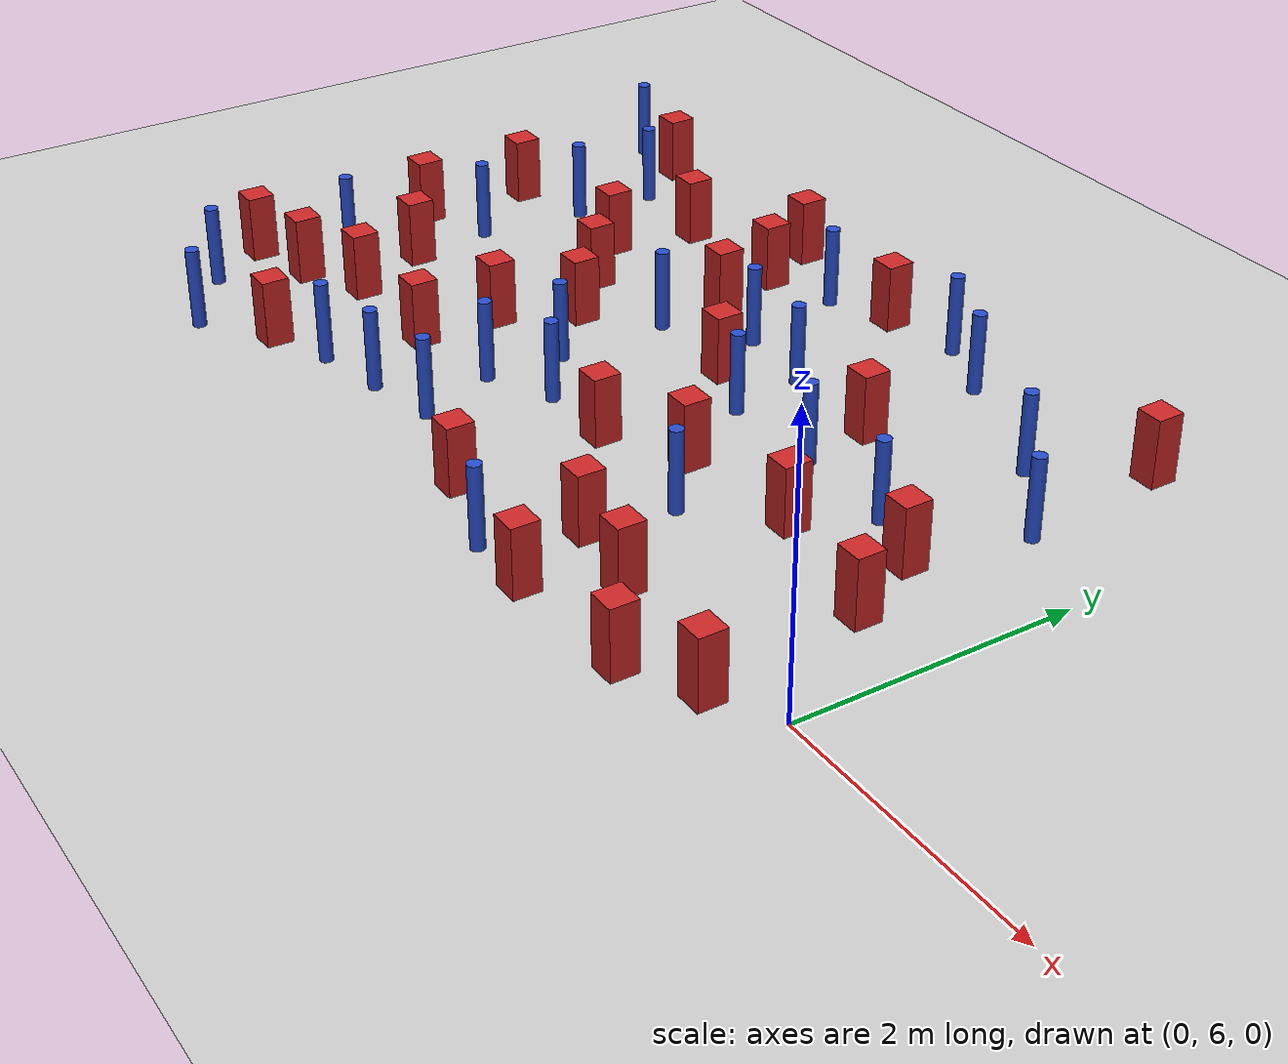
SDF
<sdf version="1.6">
 <world name="default">
  <model name="ground_plane">
   <static>1</static>
   <link name="link">
    <collision name="collision">
     <geometry><plane><normal>0 0 1</normal><size>100 100</size></plane></geometry>
     <surface><friction><ode><mu>100</mu><mu2>50</mu2></ode></friction></surface>
    </collision>
    <visual name="visual">
     <cast_shadows>0</cast_shadows>
     <geometry><plane><normal>0 0 1</normal><size>100 100</size></plane></geometry>
     <material>
      <ambient>1.0 1.0 1.0 1.0</ambient>
      <diffuse>0.8 0.8 0.8 1.0</diffuse>
      <specular>0.01 0.01 0.01 1.000000</specular>
     </material>
    </visual>
   </link>
  </model>
  <model name="pole_obstacle3">
   <static>true</static>
   <pose>-4.21250387356 7.05440987555 7.38925637345e-09 -8.47170692796e-08 1.24976764786e-08 -1.74513093032e-07</pose>
   <link name="link">
    <pose>0 0 0.3 0 -0 0</pose>
    <inertial>
     <mass>1</mass>
     <inertia><ixx>0.145833</ixx><ixy>0</ixy><ixz>0</ixz><iyy>0.145833</iyy><iyz>0</iyz><izz>0.125</izz></inertia>
    </inertial>
    <collision name="collision">
     <geometry><cylinder><radius>0.05</radius><length>.6</length></cylinder></geometry>
    </collision>
    <visual name="visual">
     <geometry><cylinder><radius>0.05</radius><length>.6</length></cylinder></geometry>
     <material>
      <script><name>Gazebo/Blue</name><uri>file://media/materials/scripts/gazebo.material</uri></script>
     </material>
    </visual>
   </link>
  </model>
  <model name="pole_obstacle4">
   <static>true</static>
   <pose>-2.12254843828 6.64884126362 7.38925637345e-09 -8.47170692798e-08 1.24976765033e-08 -1.74513093019e-07</pose>
   <link name="link">
    <pose>0 0 0.3 0 -0 0</pose>
    <inertial>
     <mass>1</mass>
     <inertia><ixx>0.145833</ixx><ixy>0</ixy><ixz>0</ixz><iyy>0.145833</iyy><iyz>0</iyz><izz>0.125</izz></inertia>
    </inertial>
    <collision name="collision">
     <geometry><cylinder><radius>0.05</radius><length>.6</length></cylinder></geometry>
    </collision>
    <visual name="visual">
     <geometry><cylinder><radius>0.05</radius><length>.6</length></cylinder></geometry>
     <material>
      <script><name>Gazebo/Blue</name><uri>file://media/materials/scripts/gazebo.material</uri></script>
     </material>
    </visual>
   </link>
  </model>
  <model name="square_post_obstacle12">
   <static>true</static>
   <pose>-3.14189247281 6.71943012908 1.91545236811e-07 -7.35059704564e-06 1.12565212e-07 2.39332434364e-05</pose>
   <link name="link">
    <pose>0 0 0.25 0 -0 0</pose>
    <inertial>
     <mass>100</mass>
     <inertia>
      <ixx>0.166667</ixx>
      <ixy>0</ixy>
      <ixz>0</ixz>
      <iyy>0.166667</iyy>
      <iyz>0</iyz>
      <izz>0.166667</izz>
     </inertia>
    </inertial>
    <collision name="collision"><geometry><box><size>.2 .2 .5</size></box></geometry></collision>
    <visual name="visual">
     <geometry><box><size>.2 .2 .5</size></box></geometry>
     <material>
      <script><name>Gazebo/Red</name><uri>file://media/materials/scripts/gazebo.material</uri></script>
     </material>
    </visual>
   </link>
  </model>
  <model name="square_post_obstacle14">
   <static>true</static>
   <pose>-4.39685745982 8.95476248692 1.91545236811e-07 -7.35059704564e-06 1.12565212e-07 2.39332434364e-05</pose>
   <link name="link">
    <pose>0 0 0.25 0 -0 0</pose>
    <inertial>
     <mass>100</mass>
     <inertia>
      <ixx>0.166667</ixx>
      <ixy>0</ixy>
      <ixz>0</ixz>
      <iyy>0.166667</iyy>
      <iyz>0</iyz>
      <izz>0.166667</izz>
     </inertia>
    </inertial>
    <collision name="collision"><geometry><box><size>.2 .2 .5</size></box></geometry></collision>
    <visual name="visual">
     <geometry><box><size>.2 .2 .5</size></box></geometry>
     <material>
      <script><name>Gazebo/Red</name><uri>file://media/materials/scripts/gazebo.material</uri></script>
     </material>
    </visual>
   </link>
  </model>
  <model name="pole_obstacle18">
   <static>true</static>
   <pose>-6.94348371261 9.46036170192 7.38925637345e-09 -8.471706928e-08 1.24976765081e-08 -1.74513093015e-07</pose>
   <link name="link">
    <pose>0 0 0.3 0 -0 0</pose>
    <inertial>
     <mass>1</mass>
     <inertia><ixx>0.145833</ixx><ixy>0</ixy><ixz>0</ixz><iyy>0.145833</iyy><iyz>0</iyz><izz>0.125</izz></inertia>
    </inertial>
    <collision name="collision">
     <geometry><cylinder><radius>0.05</radius><length>.6</length></cylinder></geometry>
    </collision>
    <visual name="visual">
     <geometry><cylinder><radius>0.05</radius><length>.6</length></cylinder></geometry>
     <material>
      <script><name>Gazebo/Blue</name><uri>file://media/materials/scripts/gazebo.material</uri></script>
     </material>
    </visual>
   </link>
  </model>
  <model name="square_post_obstacle29">
   <static>true</static>
   <pose>-0.868433852179 7.46505476726 1.91545236811e-07 -7.35059704564e-06 1.12565212e-07 2.39332434364e-05</pose>
   <link name="link">
    <pose>0 0 0.25 0 -0 0</pose>
    <inertial>
     <mass>100</mass>
     <inertia>
      <ixx>0.166667</ixx>
      <ixy>0</ixy>
      <ixz>0</ixz>
      <iyy>0.166667</iyy>
      <iyz>0</iyz>
      <izz>0.166667</izz>
     </inertia>
    </inertial>
    <collision name="collision"><geometry><box><size>.2 .2 .5</size></box></geometry></collision>
    <visual name="visual">
     <geometry><box><size>.2 .2 .5</size></box></geometry>
     <material>
      <script><name>Gazebo/Red</name><uri>file://media/materials/scripts/gazebo.material</uri></script>
     </material>
    </visual>
   </link>
  </model>
  <model name="square_post_obstacle31">
   <static>true</static>
   <pose>-0.445517426033 5.73391807086 1.91545236811e-07 -7.35059704564e-06 1.12565212e-07 2.39332434364e-05</pose>
   <link name="link">
    <pose>0 0 0.25 0 -0 0</pose>
    <inertial>
     <mass>100</mass>
     <inertia>
      <ixx>0.166667</ixx>
      <ixy>0</ixy>
      <ixz>0</ixz>
      <iyy>0.166667</iyy>
      <iyz>0</iyz>
      <izz>0.166667</izz>
     </inertia>
    </inertial>
    <collision name="collision"><geometry><box><size>.2 .2 .5</size></box></geometry></collision>
    <visual name="visual">
     <geometry><box><size>.2 .2 .5</size></box></geometry>
     <material>
      <script><name>Gazebo/Red</name><uri>file://media/materials/scripts/gazebo.material</uri></script>
     </material>
    </visual>
   </link>
  </model>
  <model name="pole_obstacle28">
   <static>true</static>
   <pose>-4.54223732897 5.76973137799 7.38925637345e-09 -8.47170692796e-08 1.24976764786e-08 -1.74513093032e-07</pose>
   <link name="link">
    <pose>0 0 0.3 0 -0 0</pose>
    <inertial>
     <mass>1</mass>
     <inertia><ixx>0.145833</ixx><ixy>0</ixy><ixz>0</ixz><iyy>0.145833</iyy><iyz>0</iyz><izz>0.125</izz></inertia>
    </inertial>
    <collision name="collision">
     <geometry><cylinder><radius>0.05</radius><length>.6</length></cylinder></geometry>
    </collision>
    <visual name="visual">
     <geometry><cylinder><radius>0.05</radius><length>.6</length></cylinder></geometry>
     <material>
      <script><name>Gazebo/Blue</name><uri>file://media/materials/scripts/gazebo.material</uri></script>
     </material>
    </visual>
   </link>
  </model>
  <model name="pole_obstacle32">
   <static>true</static>
   <pose>-1.30925387058 8.77531718577 7.38925637345e-09 -8.47170692798e-08 1.24976764881e-08 -1.74513093027e-07</pose>
   <link name="link">
    <pose>0 0 0.3 0 -0 0</pose>
    <inertial>
     <mass>1</mass>
     <inertia><ixx>0.145833</ixx><ixy>0</ixy><ixz>0</ixz><iyy>0.145833</iyy><iyz>0</iyz><izz>0.125</izz></inertia>
    </inertial>
    <collision name="collision">
     <geometry><cylinder><radius>0.05</radius><length>.6</length></cylinder></geometry>
    </collision>
    <visual name="visual">
     <geometry><cylinder><radius>0.05</radius><length>.6</length></cylinder></geometry>
     <material>
      <script><name>Gazebo/Blue</name><uri>file://media/materials/scripts/gazebo.material</uri></script>
     </material>
    </visual>
   </link>
  </model>
  <model name="pole_obstacle35">
   <static>true</static>
   <pose>-0.692903074726 8.30785724253 7.38925637345e-09 -8.47170692797e-08 1.249767648e-08 -1.74513093032e-07</pose>
   <link name="link">
    <pose>0 0 0.3 0 -0 0</pose>
    <inertial>
     <mass>1</mass>
     <inertia><ixx>0.145833</ixx><ixy>0</ixy><ixz>0</ixz><iyy>0.145833</iyy><iyz>0</iyz><izz>0.125</izz></inertia>
    </inertial>
    <collision name="collision">
     <geometry><cylinder><radius>0.05</radius><length>.6</length></cylinder></geometry>
    </collision>
    <visual name="visual">
     <geometry><cylinder><radius>0.05</radius><length>.6</length></cylinder></geometry>
     <material>
      <script><name>Gazebo/Blue</name><uri>file://media/materials/scripts/gazebo.material</uri></script>
     </material>
    </visual>
   </link>
  </model>
  <model name="square_post_obstacle40">
   <static>true</static>
   <pose>-1.91253889991 5.41171020449 1.91545236811e-07 -7.35059704564e-06 1.12565212e-07 2.39332434364e-05</pose>
   <link name="link">
    <pose>0 0 0.25 0 -0 0</pose>
    <inertial>
     <mass>100</mass>
     <inertia>
      <ixx>0.166667</ixx>
      <ixy>0</ixy>
      <ixz>0</ixz>
      <iyy>0.166667</iyy>
      <iyz>0</iyz>
      <izz>0.166667</izz>
     </inertia>
    </inertial>
    <collision name="collision"><geometry><box><size>.2 .2 .5</size></box></geometry></collision>
    <visual name="visual">
     <geometry><box><size>.2 .2 .5</size></box></geometry>
     <material>
      <script><name>Gazebo/Red</name><uri>file://media/materials/scripts/gazebo.material</uri></script>
     </material>
    </visual>
   </link>
  </model>
  <model name="square_post_obstacle44">
   <static>true</static>
   <pose>-6.35034907287 6.10343025562 1.91545236811e-07 -7.35059704564e-06 1.12565212e-07 2.39332434364e-05</pose>
   <link name="link">
    <pose>0 0 0.25 0 -0 0</pose>
    <inertial>
     <mass>100</mass>
     <inertia>
      <ixx>0.166667</ixx>
      <ixy>0</ixy>
      <ixz>0</ixz>
      <iyy>0.166667</iyy>
      <iyz>0</iyz>
      <izz>0.166667</izz>
     </inertia>
    </inertial>
    <collision name="collision"><geometry><box><size>.2 .2 .5</size></box></geometry></collision>
    <visual name="visual">
     <geometry><box><size>.2 .2 .5</size></box></geometry>
     <material>
      <script><name>Gazebo/Red</name><uri>file://media/materials/scripts/gazebo.material</uri></script>
     </material>
    </visual>
   </link>
  </model>
  <model name="square_post_obstacle48">
   <static>true</static>
   <pose>-5.09256092245 7.86908513471 1.91545236811e-07 -7.35059704564e-06 1.12565212e-07 2.39332434364e-05</pose>
   <link name="link">
    <pose>0 0 0.25 0 -0 0</pose>
    <inertial>
     <mass>100</mass>
     <inertia>
      <ixx>0.166667</ixx>
      <ixy>0</ixy>
      <ixz>0</ixz>
      <iyy>0.166667</iyy>
      <iyz>0</iyz>
      <izz>0.166667</izz>
     </inertia>
    </inertial>
    <collision name="collision"><geometry><box><size>.2 .2 .5</size></box></geometry></collision>
    <visual name="visual">
     <geometry><box><size>.2 .2 .5</size></box></geometry>
     <material>
      <script><name>Gazebo/Red</name><uri>file://media/materials/scripts/gazebo.material</uri></script>
     </material>
    </visual>
   </link>
  </model>
  <model name="pole_obstacle50">
   <static>true</static>
   <pose>-3.05288058905 8.2361662869 7.38925637345e-09 -8.47170692799e-08 1.24976765012e-08 -1.74513093021e-07</pose>
   <link name="link">
    <pose>0 0 0.3 0 -0 0</pose>
    <inertial>
     <mass>1</mass>
     <inertia><ixx>0.145833</ixx><ixy>0</ixy><ixz>0</ixz><iyy>0.145833</iyy><iyz>0</iyz><izz>0.125</izz></inertia>
    </inertial>
    <collision name="collision">
     <geometry><cylinder><radius>0.05</radius><length>.6</length></cylinder></geometry>
    </collision>
    <visual name="visual">
     <geometry><cylinder><radius>0.05</radius><length>.6</length></cylinder></geometry>
     <material>
      <script><name>Gazebo/Blue</name><uri>file://media/materials/scripts/gazebo.material</uri></script>
     </material>
    </visual>
   </link>
  </model>
  <model name="pole_obstacle61">
   <static>true</static>
   <pose>-5.07855618817 5.65930029785 7.38925637345e-09 -8.47170692796e-08 1.24976764786e-08 -1.74513093032e-07</pose>
   <link name="link">
    <pose>0 0 0.3 0 -0 0</pose>
    <inertial>
     <mass>1</mass>
     <inertia><ixx>0.145833</ixx><ixy>0</ixy><ixz>0</ixz><iyy>0.145833</iyy><iyz>0</iyz><izz>0.125</izz></inertia>
    </inertial>
    <collision name="collision">
     <geometry><cylinder><radius>0.05</radius><length>.6</length></cylinder></geometry>
    </collision>
    <visual name="visual">
     <geometry><cylinder><radius>0.05</radius><length>.6</length></cylinder></geometry>
     <material>
      <script><name>Gazebo/Blue</name><uri>file://media/materials/scripts/gazebo.material</uri></script>
     </material>
    </visual>
   </link>
  </model>
  <model name="square_post_obstacle67">
   <static>true</static>
   <pose>-5.3651662571 8.91382258164 1.91545236811e-07 -7.35059704564e-06 1.12565212e-07 2.39332434364e-05</pose>
   <link name="link">
    <pose>0 0 0.25 0 -0 0</pose>
    <inertial>
     <mass>100</mass>
     <inertia>
      <ixx>0.166667</ixx>
      <ixy>0</ixy>
      <ixz>0</ixz>
      <iyy>0.166667</iyy>
      <iyz>0</iyz>
      <izz>0.166667</izz>
     </inertia>
    </inertial>
    <collision name="collision"><geometry><box><size>.2 .2 .5</size></box></geometry></collision>
    <visual name="visual">
     <geometry><box><size>.2 .2 .5</size></box></geometry>
     <material>
      <script><name>Gazebo/Red</name><uri>file://media/materials/scripts/gazebo.material</uri></script>
     </material>
    </visual>
   </link>
  </model>
  <model name="pole_obstacle67">
   <static>true</static>
   <pose>-6.61263077073 5.50355209612 7.38925637345e-09 -8.47170692796e-08 1.24976764786e-08 -1.74513093032e-07</pose>
   <link name="link">
    <pose>0 0 0.3 0 -0 0</pose>
    <inertial>
     <mass>1</mass>
     <inertia><ixx>0.145833</ixx><ixy>0</ixy><ixz>0</ixz><iyy>0.145833</iyy><iyz>0</iyz><izz>0.125</izz></inertia>
    </inertial>
    <collision name="collision">
     <geometry><cylinder><radius>0.05</radius><length>.6</length></cylinder></geometry>
    </collision>
    <visual name="visual">
     <geometry><cylinder><radius>0.05</radius><length>.6</length></cylinder></geometry>
     <material>
      <script><name>Gazebo/Blue</name><uri>file://media/materials/scripts/gazebo.material</uri></script>
     </material>
    </visual>
   </link>
  </model>
  <model name="pole_obstacle85">
   <static>true</static>
   <pose>-4.24014368975 6.47820569607 7.38925637345e-09 -8.47170692796e-08 1.24976764786e-08 -1.74513093032e-07</pose>
   <link name="link">
    <pose>0 0 0.3 0 -0 0</pose>
    <inertial>
     <mass>1</mass>
     <inertia><ixx>0.145833</ixx><ixy>0</ixy><ixz>0</ixz><iyy>0.145833</iyy><iyz>0</iyz><izz>0.125</izz></inertia>
    </inertial>
    <collision name="collision">
     <geometry><cylinder><radius>0.05</radius><length>.6</length></cylinder></geometry>
    </collision>
    <visual name="visual">
     <geometry><cylinder><radius>0.05</radius><length>.6</length></cylinder></geometry>
     <material>
      <script><name>Gazebo/Blue</name><uri>file://media/materials/scripts/gazebo.material</uri></script>
     </material>
    </visual>
   </link>
  </model>
  <model name="pole_obstacle86">
   <static>true</static>
   <pose>-2.9412845565 7.66277448444 7.38925637345e-09 -8.47170692798e-08 1.24976765033e-08 -1.74513093019e-07</pose>
   <link name="link">
    <pose>0 0 0.3 0 -0 0</pose>
    <inertial>
     <mass>1</mass>
     <inertia><ixx>0.145833</ixx><ixy>0</ixy><ixz>0</ixz><iyy>0.145833</iyy><iyz>0</iyz><izz>0.125</izz></inertia>
    </inertial>
    <collision name="collision">
     <geometry><cylinder><radius>0.05</radius><length>.6</length></cylinder></geometry>
    </collision>
    <visual name="visual">
     <geometry><cylinder><radius>0.05</radius><length>.6</length></cylinder></geometry>
     <material>
      <script><name>Gazebo/Blue</name><uri>file://media/materials/scripts/gazebo.material</uri></script>
     </material>
    </visual>
   </link>
  </model>
  <model name="square_post_obstacle81">
   <static>true</static>
   <pose>-1.58127793357 5.92906814144 1.91545236811e-07 -7.35059704564e-06 1.12565212e-07 2.39332434364e-05</pose>
   <link name="link">
    <pose>0 0 0.25 0 -0 0</pose>
    <inertial>
     <mass>100</mass>
     <inertia>
      <ixx>0.166667</ixx>
      <ixy>0</ixy>
      <ixz>0</ixz>
      <iyy>0.166667</iyy>
      <iyz>0</iyz>
      <izz>0.166667</izz>
     </inertia>
    </inertial>
    <collision name="collision"><geometry><box><size>.2 .2 .5</size></box></geometry></collision>
    <visual name="visual">
     <geometry><box><size>.2 .2 .5</size></box></geometry>
     <material>
      <script><name>Gazebo/Red</name><uri>file://media/materials/scripts/gazebo.material</uri></script>
     </material>
    </visual>
   </link>
  </model>
  <model name="pole_obstacle91">
   <static>true</static>
   <pose>-2.1507137256 7.68168808465 7.38925637345e-09 -8.47170692798e-08 1.24976765033e-08 -1.74513093019e-07</pose>
   <link name="link">
    <pose>0 0 0.3 0 -0 0</pose>
    <inertial>
     <mass>1</mass>
     <inertia><ixx>0.145833</ixx><ixy>0</ixy><ixz>0</ixz><iyy>0.145833</iyy><iyz>0</iyz><izz>0.125</izz></inertia>
    </inertial>
    <collision name="collision">
     <geometry><cylinder><radius>0.05</radius><length>.6</length></cylinder></geometry>
    </collision>
    <visual name="visual">
     <geometry><cylinder><radius>0.05</radius><length>.6</length></cylinder></geometry>
     <material>
      <script><name>Gazebo/Blue</name><uri>file://media/materials/scripts/gazebo.material</uri></script>
     </material>
    </visual>
   </link>
  </model>
  <model name="pole_obstacle94">
   <static>true</static>
   <pose>-2.42653018251 5.41245888715 7.38925637345e-09 -8.47170692798e-08 1.24976765033e-08 -1.74513093019e-07</pose>
   <link name="link">
    <pose>0 0 0.3 0 -0 0</pose>
    <inertial>
     <mass>1</mass>
     <inertia><ixx>0.145833</ixx><ixy>0</ixy><ixz>0</ixz><iyy>0.145833</iyy><iyz>0</iyz><izz>0.125</izz></inertia>
    </inertial>
    <collision name="collision">
     <geometry><cylinder><radius>0.05</radius><length>.6</length></cylinder></geometry>
    </collision>
    <visual name="visual">
     <geometry><cylinder><radius>0.05</radius><length>.6</length></cylinder></geometry>
     <material>
      <script><name>Gazebo/Blue</name><uri>file://media/materials/scripts/gazebo.material</uri></script>
     </material>
    </visual>
   </link>
  </model>
  <model name="square_post_obstacle87">
   <static>true</static>
   <pose>-4.67158444647 7.48112963935 1.91545236811e-07 -7.35059704564e-06 1.12565212e-07 2.39332434364e-05</pose>
   <link name="link">
    <pose>0 0 0.25 0 -0 0</pose>
    <inertial>
     <mass>100</mass>
     <inertia>
      <ixx>0.166667</ixx>
      <ixy>0</ixy>
      <ixz>0</ixz>
      <iyy>0.166667</iyy>
      <iyz>0</iyz>
      <izz>0.166667</izz>
     </inertia>
    </inertial>
    <collision name="collision"><geometry><box><size>.2 .2 .5</size></box></geometry></collision>
    <visual name="visual">
     <geometry><box><size>.2 .2 .5</size></box></geometry>
     <material>
      <script><name>Gazebo/Red</name><uri>file://media/materials/scripts/gazebo.material</uri></script>
     </material>
    </visual>
   </link>
  </model>
  <model name="pole_obstacle101">
   <static>true</static>
   <pose>-6.25589998211 7.56285176361 7.38925637345e-09 -8.47170692796e-08 1.24976764786e-08 -1.74513093032e-07</pose>
   <link name="link">
    <pose>0 0 0.3 0 -0 0</pose>
    <inertial>
     <mass>1</mass>
     <inertia><ixx>0.145833</ixx><ixy>0</ixy><ixz>0</ixz><iyy>0.145833</iyy><iyz>0</iyz><izz>0.125</izz></inertia>
    </inertial>
    <collision name="collision">
     <geometry><cylinder><radius>0.05</radius><length>.6</length></cylinder></geometry>
    </collision>
    <visual name="visual">
     <geometry><cylinder><radius>0.05</radius><length>.6</length></cylinder></geometry>
     <material>
      <script><name>Gazebo/Blue</name><uri>file://media/materials/scripts/gazebo.material</uri></script>
     </material>
    </visual>
   </link>
  </model>
  <model name="pole_obstacle106">
   <static>true</static>
   <pose>-6.14672542695 9.00383483299 7.38925637345e-09 -8.471706928e-08 1.24976765081e-08 -1.74513093015e-07</pose>
   <link name="link">
    <pose>0 0 0.3 0 -0 0</pose>
    <inertial>
     <mass>1</mass>
     <inertia><ixx>0.145833</ixx><ixy>0</ixy><ixz>0</ixz><iyy>0.145833</iyy><iyz>0</iyz><izz>0.125</izz></inertia>
    </inertial>
    <collision name="collision">
     <geometry><cylinder><radius>0.05</radius><length>.6</length></cylinder></geometry>
    </collision>
    <visual name="visual">
     <geometry><cylinder><radius>0.05</radius><length>.6</length></cylinder></geometry>
     <material>
      <script><name>Gazebo/Blue</name><uri>file://media/materials/scripts/gazebo.material</uri></script>
     </material>
    </visual>
   </link>
  </model>
  <model name="square_post_obstacle98">
   <static>true</static>
   <pose>-0.593999998448 6.91072029652 1.91545236811e-07 -7.35059704564e-06 1.12565212e-07 2.39332434364e-05</pose>
   <link name="link">
    <pose>0 0 0.25 0 -0 0</pose>
    <inertial>
     <mass>100</mass>
     <inertia>
      <ixx>0.166667</ixx>
      <ixy>0</ixy>
      <ixz>0</ixz>
      <iyy>0.166667</iyy>
      <iyz>0</iyz>
      <izz>0.166667</izz>
     </inertia>
    </inertial>
    <collision name="collision"><geometry><box><size>.2 .2 .5</size></box></geometry></collision>
    <visual name="visual">
     <geometry><box><size>.2 .2 .5</size></box></geometry>
     <material>
      <script><name>Gazebo/Red</name><uri>file://media/materials/scripts/gazebo.material</uri></script>
     </material>
    </visual>
   </link>
  </model>
  <model name="pole_obstacle119">
   <static>true</static>
   <pose>-6.17205582778 8.37317589138 7.38925637345e-09 -8.471706928e-08 1.24976765081e-08 -1.74513093015e-07</pose>
   <link name="link">
    <pose>0 0 0.3 0 -0 0</pose>
    <inertial>
     <mass>1</mass>
     <inertia><ixx>0.145833</ixx><ixy>0</ixy><ixz>0</ixz><iyy>0.145833</iyy><iyz>0</iyz><izz>0.125</izz></inertia>
    </inertial>
    <collision name="collision">
     <geometry><cylinder><radius>0.05</radius><length>.6</length></cylinder></geometry>
    </collision>
    <visual name="visual">
     <geometry><cylinder><radius>0.05</radius><length>.6</length></cylinder></geometry>
     <material>
      <script><name>Gazebo/Blue</name><uri>file://media/materials/scripts/gazebo.material</uri></script>
     </material>
    </visual>
   </link>
  </model>
  <model name="square_post_obstacle110">
   <static>true</static>
   <pose>-0.817348726342 9.417959516 1.91545236811e-07 -7.35059704564e-06 1.12565212e-07 2.39332434364e-05</pose>
   <link name="link">
    <pose>0 0 0.25 0 -0 0</pose>
    <inertial>
     <mass>100</mass>
     <inertia>
      <ixx>0.166667</ixx>
      <ixy>0</ixy>
      <ixz>0</ixz>
      <iyy>0.166667</iyy>
      <iyz>0</iyz>
      <izz>0.166667</izz>
     </inertia>
    </inertial>
    <collision name="collision"><geometry><box><size>.2 .2 .5</size></box></geometry></collision>
    <visual name="visual">
     <geometry><box><size>.2 .2 .5</size></box></geometry>
     <material>
      <script><name>Gazebo/Red</name><uri>file://media/materials/scripts/gazebo.material</uri></script>
     </material>
    </visual>
   </link>
  </model>
  <model name="pole_obstacle134">
   <static>true</static>
   <pose>-6.04169919057 5.11598871443 7.38925637345e-09 -8.47170692796e-08 1.24976764786e-08 -1.74513093032e-07</pose>
   <link name="link">
    <pose>0 0 0.3 0 -0 0</pose>
    <inertial>
     <mass>1</mass>
     <inertia><ixx>0.145833</ixx><ixy>0</ixy><ixz>0</ixz><iyy>0.145833</iyy><iyz>0</iyz><izz>0.125</izz></inertia>
    </inertial>
    <collision name="collision">
     <geometry><cylinder><radius>0.05</radius><length>.6</length></cylinder></geometry>
    </collision>
    <visual name="visual">
     <geometry><cylinder><radius>0.05</radius><length>.6</length></cylinder></geometry>
     <material>
      <script><name>Gazebo/Blue</name><uri>file://media/materials/scripts/gazebo.material</uri></script>
     </material>
    </visual>
   </link>
  </model>
  <model name="pole_obstacle137">
   <static>true</static>
   <pose>-4.0074311876 5.88955513012 7.38925637345e-09 -8.47170692795e-08 1.24976764731e-08 -1.74513093035e-07</pose>
   <link name="link">
    <pose>0 0 0.3 0 -0 0</pose>
    <inertial>
     <mass>1</mass>
     <inertia><ixx>0.145833</ixx><ixy>0</ixy><ixz>0</ixz><iyy>0.145833</iyy><iyz>0</iyz><izz>0.125</izz></inertia>
    </inertial>
    <collision name="collision">
     <geometry><cylinder><radius>0.05</radius><length>.6</length></cylinder></geometry>
    </collision>
    <visual name="visual">
     <geometry><cylinder><radius>0.05</radius><length>.6</length></cylinder></geometry>
     <material>
      <script><name>Gazebo/Blue</name><uri>file://media/materials/scripts/gazebo.material</uri></script>
     </material>
    </visual>
   </link>
  </model>
  <model name="pole_obstacle138">
   <static>true</static>
   <pose>-2.30431967148 9.1839504078 7.38925637345e-09 -8.47170692793e-08 1.24976764408e-08 -1.74513093041e-07</pose>
   <link name="link">
    <pose>0 0 0.3 0 -0 0</pose>
    <inertial>
     <mass>1</mass>
     <inertia><ixx>0.145833</ixx><ixy>0</ixy><ixz>0</ixz><iyy>0.145833</iyy><iyz>0</iyz><izz>0.125</izz></inertia>
    </inertial>
    <collision name="collision">
     <geometry><cylinder><radius>0.05</radius><length>.6</length></cylinder></geometry>
    </collision>
    <visual name="visual">
     <geometry><cylinder><radius>0.05</radius><length>.6</length></cylinder></geometry>
     <material>
      <script><name>Gazebo/Blue</name><uri>file://media/materials/scripts/gazebo.material</uri></script>
     </material>
    </visual>
   </link>
  </model>
  <model name="square_post_obstacle121">
   <static>true</static>
   <pose>-5.8792181397 6.33974853669 1.91545236811e-07 -7.35059704564e-06 1.12565212e-07 2.39332434364e-05</pose>
   <link name="link">
    <pose>0 0 0.25 0 -0 0</pose>
    <inertial>
     <mass>100</mass>
     <inertia>
      <ixx>0.166667</ixx>
      <ixy>0</ixy>
      <ixz>0</ixz>
      <iyy>0.166667</iyy>
      <iyz>0</iyz>
      <izz>0.166667</izz>
     </inertia>
    </inertial>
    <collision name="collision"><geometry><box><size>.2 .2 .5</size></box></geometry></collision>
    <visual name="visual">
     <geometry><box><size>.2 .2 .5</size></box></geometry>
     <material>
      <script><name>Gazebo/Red</name><uri>file://media/materials/scripts/gazebo.material</uri></script>
     </material>
    </visual>
   </link>
  </model>
  <model name="square_post_obstacle122">
   <static>true</static>
   <pose>-6.16232624778 6.93560101726 1.91545236811e-07 -7.35059704564e-06 1.12565212e-07 2.39332434364e-05</pose>
   <link name="link">
    <pose>0 0 0.25 0 -0 0</pose>
    <inertial>
     <mass>100</mass>
     <inertia>
      <ixx>0.166667</ixx>
      <ixy>0</ixy>
      <ixz>0</ixz>
      <iyy>0.166667</iyy>
      <iyz>0</iyz>
      <izz>0.166667</izz>
     </inertia>
    </inertial>
    <collision name="collision"><geometry><box><size>.2 .2 .5</size></box></geometry></collision>
    <visual name="visual">
     <geometry><box><size>.2 .2 .5</size></box></geometry>
     <material>
      <script><name>Gazebo/Red</name><uri>file://media/materials/scripts/gazebo.material</uri></script>
     </material>
    </visual>
   </link>
  </model>
  <model name="pole_obstacle139">
   <static>true</static>
   <pose>-2.81705833394 9.41263256244 7.38925637345e-09 -8.47170692793e-08 1.24976764408e-08 -1.74513093041e-07</pose>
   <link name="link">
    <pose>0 0 0.3 0 -0 0</pose>
    <inertial>
     <mass>1</mass>
     <inertia><ixx>0.145833</ixx><ixy>0</ixy><ixz>0</ixz><iyy>0.145833</iyy><iyz>0</iyz><izz>0.125</izz></inertia>
    </inertial>
    <collision name="collision">
     <geometry><cylinder><radius>0.05</radius><length>.6</length></cylinder></geometry>
    </collision>
    <visual name="visual">
     <geometry><cylinder><radius>0.05</radius><length>.6</length></cylinder></geometry>
     <material>
      <script><name>Gazebo/Blue</name><uri>file://media/materials/scripts/gazebo.material</uri></script>
     </material>
    </visual>
   </link>
  </model>
  <model name="square_post_obstacle124">
   <static>true</static>
   <pose>-4.60544709263 9.42589373158 1.91545236811e-07 -7.35059704564e-06 1.12565212e-07 2.39332434364e-05</pose>
   <link name="link">
    <pose>0 0 0.25 0 -0 0</pose>
    <inertial>
     <mass>100</mass>
     <inertia>
      <ixx>0.166667</ixx>
      <ixy>0</ixy>
      <ixz>0</ixz>
      <iyy>0.166667</iyy>
      <iyz>0</iyz>
      <izz>0.166667</izz>
     </inertia>
    </inertial>
    <collision name="collision"><geometry><box><size>.2 .2 .5</size></box></geometry></collision>
    <visual name="visual">
     <geometry><box><size>.2 .2 .5</size></box></geometry>
     <material>
      <script><name>Gazebo/Red</name><uri>file://media/materials/scripts/gazebo.material</uri></script>
     </material>
    </visual>
   </link>
  </model>
  <model name="pole_obstacle140">
   <static>true</static>
   <pose>-3.75057997912 6.71188347238 7.38925637345e-09 -8.47170692798e-08 1.24976765033e-08 -1.74513093019e-07</pose>
   <link name="link">
    <pose>0 0 0.3 0 -0 0</pose>
    <inertial>
     <mass>1</mass>
     <inertia><ixx>0.145833</ixx><ixy>0</ixy><ixz>0</ixz><iyy>0.145833</iyy><iyz>0</iyz><izz>0.125</izz></inertia>
    </inertial>
    <collision name="collision">
     <geometry><cylinder><radius>0.05</radius><length>.6</length></cylinder></geometry>
    </collision>
    <visual name="visual">
     <geometry><cylinder><radius>0.05</radius><length>.6</length></cylinder></geometry>
     <material>
      <script><name>Gazebo/Blue</name><uri>file://media/materials/scripts/gazebo.material</uri></script>
     </material>
    </visual>
   </link>
  </model>
  <model name="square_post_obstacle130">
   <static>true</static>
   <pose>-2.19491162277 6.02791713795 1.91545236811e-07 -7.35059704564e-06 1.12565212e-07 2.39332434364e-05</pose>
   <link name="link">
    <pose>0 0 0.25 0 -0 0</pose>
    <inertial>
     <mass>100</mass>
     <inertia>
      <ixx>0.166667</ixx>
      <ixy>0</ixy>
      <ixz>0</ixz>
      <iyy>0.166667</iyy>
      <iyz>0</iyz>
      <izz>0.166667</izz>
     </inertia>
    </inertial>
    <collision name="collision"><geometry><box><size>.2 .2 .5</size></box></geometry></collision>
    <visual name="visual">
     <geometry><box><size>.2 .2 .5</size></box></geometry>
     <material>
      <script><name>Gazebo/Red</name><uri>file://media/materials/scripts/gazebo.material</uri></script>
     </material>
    </visual>
   </link>
  </model>
  <model name="square_post_obstacle133">
   <static>true</static>
   <pose>-6.88546192906 5.96710388537 1.91545236811e-07 -7.35059704564e-06 1.12565212e-07 2.39332434364e-05</pose>
   <link name="link">
    <pose>0 0 0.25 0 -0 0</pose>
    <inertial>
     <mass>100</mass>
     <inertia>
      <ixx>0.166667</ixx>
      <ixy>0</ixy>
      <ixz>0</ixz>
      <iyy>0.166667</iyy>
      <iyz>0</iyz>
      <izz>0.166667</izz>
     </inertia>
    </inertial>
    <collision name="collision"><geometry><box><size>.2 .2 .5</size></box></geometry></collision>
    <visual name="visual">
     <geometry><box><size>.2 .2 .5</size></box></geometry>
     <material>
      <script><name>Gazebo/Red</name><uri>file://media/materials/scripts/gazebo.material</uri></script>
     </material>
    </visual>
   </link>
  </model>
  <model name="pole_obstacle145">
   <static>true</static>
   <pose>-3.68397018193 8.31168028505 7.38925637345e-09 -8.47170692793e-08 1.24976764408e-08 -1.74513093041e-07</pose>
   <link name="link">
    <pose>0 0 0.3 0 -0 0</pose>
    <inertial>
     <mass>1</mass>
     <inertia><ixx>0.145833</ixx><ixy>0</ixy><ixz>0</ixz><iyy>0.145833</iyy><iyz>0</iyz><izz>0.125</izz></inertia>
    </inertial>
    <collision name="collision">
     <geometry><cylinder><radius>0.05</radius><length>.6</length></cylinder></geometry>
    </collision>
    <visual name="visual">
     <geometry><cylinder><radius>0.05</radius><length>.6</length></cylinder></geometry>
     <material>
      <script><name>Gazebo/Blue</name><uri>file://media/materials/scripts/gazebo.material</uri></script>
     </material>
    </visual>
   </link>
  </model>
  <model name="square_post_obstacle145">
   <static>true</static>
   <pose>-4.22782166089 8.42256746376 1.91545236811e-07 -7.35059704564e-06 1.12565212e-07 2.39332434364e-05</pose>
   <link name="link">
    <pose>0 0 0.25 0 -0 0</pose>
    <inertial>
     <mass>100</mass>
     <inertia>
      <ixx>0.166667</ixx>
      <ixy>0</ixy>
      <ixz>0</ixz>
      <iyy>0.166667</iyy>
      <iyz>0</iyz>
      <izz>0.166667</izz>
     </inertia>
    </inertial>
    <collision name="collision"><geometry><box><size>.2 .2 .5</size></box></geometry></collision>
    <visual name="visual">
     <geometry><box><size>.2 .2 .5</size></box></geometry>
     <material>
      <script><name>Gazebo/Red</name><uri>file://media/materials/scripts/gazebo.material</uri></script>
     </material>
    </visual>
   </link>
  </model>
  <model name="square_post_obstacle159">
   <static>true</static>
   <pose>-4.97582565582 6.34746797279 1.91545236811e-07 -7.35059704564e-06 1.12565212e-07 2.39332434364e-05</pose>
   <link name="link">
    <pose>0 0 0.25 0 -0 0</pose>
    <inertial>
     <mass>100</mass>
     <inertia>
      <ixx>0.166667</ixx>
      <ixy>0</ixy>
      <ixz>0</ixz>
      <iyy>0.166667</iyy>
      <iyz>0</iyz>
      <izz>0.166667</izz>
     </inertia>
    </inertial>
    <collision name="collision"><geometry><box><size>.2 .2 .5</size></box></geometry></collision>
    <visual name="visual">
     <geometry><box><size>.2 .2 .5</size></box></geometry>
     <material>
      <script><name>Gazebo/Red</name><uri>file://media/materials/scripts/gazebo.material</uri></script>
     </material>
    </visual>
   </link>
  </model>
  <model name="pole_obstacle174">
   <static>true</static>
   <pose>-1.35024476187 7.64545258392 7.38925637345e-09 -8.47170692799e-08 1.24976765033e-08 -1.74513093018e-07</pose>
   <link name="link">
    <pose>0 0 0.3 0 -0 0</pose>
    <inertial>
     <mass>1</mass>
     <inertia><ixx>0.145833</ixx><ixy>0</ixy><ixz>0</ixz><iyy>0.145833</iyy><iyz>0</iyz><izz>0.125</izz></inertia>
    </inertial>
    <collision name="collision">
     <geometry><cylinder><radius>0.05</radius><length>.6</length></cylinder></geometry>
    </collision>
    <visual name="visual">
     <geometry><cylinder><radius>0.05</radius><length>.6</length></cylinder></geometry>
     <material>
      <script><name>Gazebo/Blue</name><uri>file://media/materials/scripts/gazebo.material</uri></script>
     </material>
    </visual>
   </link>
  </model>
  <model name="pole_obstacle176">
   <static>true</static>
   <pose>-4.22914786898 7.89988278258 7.38925637345e-09 -8.47170692796e-08 1.24976764786e-08 -1.74513093032e-07</pose>
   <link name="link">
    <pose>0 0 0.3 0 -0 0</pose>
    <inertial>
     <mass>1</mass>
     <inertia><ixx>0.145833</ixx><ixy>0</ixy><ixz>0</ixz><iyy>0.145833</iyy><iyz>0</iyz><izz>0.125</izz></inertia>
    </inertial>
    <collision name="collision">
     <geometry><cylinder><radius>0.05</radius><length>.6</length></cylinder></geometry>
    </collision>
    <visual name="visual">
     <geometry><cylinder><radius>0.05</radius><length>.6</length></cylinder></geometry>
     <material>
      <script><name>Gazebo/Blue</name><uri>file://media/materials/scripts/gazebo.material</uri></script>
     </material>
    </visual>
   </link>
  </model>
  <model name="square_post_obstacle165">
   <static>true</static>
   <pose>-3.40297437078 9.31130780792 1.91545236811e-07 -7.35059704564e-06 1.12565212e-07 2.39332434364e-05</pose>
   <link name="link">
    <pose>0 0 0.25 0 -0 0</pose>
    <inertial>
     <mass>100</mass>
     <inertia>
      <ixx>0.166667</ixx>
      <ixy>0</ixy>
      <ixz>0</ixz>
      <iyy>0.166667</iyy>
      <iyz>0</iyz>
      <izz>0.166667</izz>
     </inertia>
    </inertial>
    <collision name="collision"><geometry><box><size>.2 .2 .5</size></box></geometry></collision>
    <visual name="visual">
     <geometry><box><size>.2 .2 .5</size></box></geometry>
     <material>
      <script><name>Gazebo/Red</name><uri>file://media/materials/scripts/gazebo.material</uri></script>
     </material>
    </visual>
   </link>
  </model>
  <model name="square_post_obstacle176">
   <static>true</static>
   <pose>-2.56384311595 7.03252480635 1.91545236811e-07 -7.35059704564e-06 1.12565212e-07 2.39332434364e-05</pose>
   <link name="link">
    <pose>0 0 0.25 0 -0 0</pose>
    <inertial>
     <mass>100</mass>
     <inertia>
      <ixx>0.166667</ixx>
      <ixy>0</ixy>
      <ixz>0</ixz>
      <iyy>0.166667</iyy>
      <iyz>0</iyz>
      <izz>0.166667</izz>
     </inertia>
    </inertial>
    <collision name="collision"><geometry><box><size>.2 .2 .5</size></box></geometry></collision>
    <visual name="visual">
     <geometry><box><size>.2 .2 .5</size></box></geometry>
     <material>
      <script><name>Gazebo/Red</name><uri>file://media/materials/scripts/gazebo.material</uri></script>
     </material>
    </visual>
   </link>
  </model>
  <model name="square_post_obstacle181">
   <static>true</static>
   <pose>-4.95345217852 6.95091689674 1.91545236811e-07 -7.35059704564e-06 1.12565212e-07 2.39332434364e-05</pose>
   <link name="link">
    <pose>0 0 0.25 0 -0 0</pose>
    <inertial>
     <mass>100</mass>
     <inertia>
      <ixx>0.166667</ixx>
      <ixy>0</ixy>
      <ixz>0</ixz>
      <iyy>0.166667</iyy>
      <iyz>0</iyz>
      <izz>0.166667</izz>
     </inertia>
    </inertial>
    <collision name="collision"><geometry><box><size>.2 .2 .5</size></box></geometry></collision>
    <visual name="visual">
     <geometry><box><size>.2 .2 .5</size></box></geometry>
     <material>
      <script><name>Gazebo/Red</name><uri>file://media/materials/scripts/gazebo.material</uri></script>
     </material>
    </visual>
   </link>
  </model>
  <model name="square_post_obstacle185">
   <static>true</static>
   <pose>-3.10766293185 5.62962516574 1.91545236811e-07 -7.35059704564e-06 1.12565212e-07 2.39332434364e-05</pose>
   <link name="link">
    <pose>0 0 0.25 0 -0 0</pose>
    <inertial>
     <mass>100</mass>
     <inertia>
      <ixx>0.166667</ixx>
      <ixy>0</ixy>
      <ixz>0</ixz>
      <iyy>0.166667</iyy>
      <iyz>0</iyz>
      <izz>0.166667</izz>
     </inertia>
    </inertial>
    <collision name="collision"><geometry><box><size>.2 .2 .5</size></box></geometry></collision>
    <visual name="visual">
     <geometry><box><size>.2 .2 .5</size></box></geometry>
     <material>
      <script><name>Gazebo/Red</name><uri>file://media/materials/scripts/gazebo.material</uri></script>
     </material>
    </visual>
   </link>
  </model>
  <model name="square_post_obstacle189">
   <static>true</static>
   <pose>-1.60487410606 7.13108283991 1.91545236811e-07 -7.35059704564e-06 1.12565212e-07 2.39332434364e-05</pose>
   <link name="link">
    <pose>0 0 0.25 0 -0 0</pose>
    <inertial>
     <mass>100</mass>
     <inertia>
      <ixx>0.166667</ixx>
      <ixy>0</ixy>
      <ixz>0</ixz>
      <iyy>0.166667</iyy>
      <iyz>0</iyz>
      <izz>0.166667</izz>
     </inertia>
    </inertial>
    <collision name="collision"><geometry><box><size>.2 .2 .5</size></box></geometry></collision>
    <visual name="visual">
     <geometry><box><size>.2 .2 .5</size></box></geometry>
     <material>
      <script><name>Gazebo/Red</name><uri>file://media/materials/scripts/gazebo.material</uri></script>
     </material>
    </visual>
   </link>
  </model>
  <model name="pole_obstacle204">
   <static>true</static>
   <pose>-6.59063606154 6.57655550833 7.38925637345e-09 -8.47170692796e-08 1.24976764786e-08 -1.74513093032e-07</pose>
   <link name="link">
    <pose>0 0 0.3 0 -0 0</pose>
    <inertial>
     <mass>1</mass>
     <inertia><ixx>0.145833</ixx><ixy>0</ixy><ixz>0</ixz><iyy>0.145833</iyy><iyz>0</iyz><izz>0.125</izz></inertia>
    </inertial>
    <collision name="collision">
     <geometry><cylinder><radius>0.05</radius><length>.6</length></cylinder></geometry>
    </collision>
    <visual name="visual">
     <geometry><cylinder><radius>0.05</radius><length>.6</length></cylinder></geometry>
     <material>
      <script><name>Gazebo/Blue</name><uri>file://media/materials/scripts/gazebo.material</uri></script>
     </material>
    </visual>
   </link>
  </model>
  <model name="pole_obstacle211">
   <static>true</static>
   <pose>-3.88485970449 9.13457409664 7.38925637345e-09 -8.47170692793e-08 1.24976764408e-08 -1.74513093041e-07</pose>
   <link name="link">
    <pose>0 0 0.3 0 -0 0</pose>
    <inertial>
     <mass>1</mass>
     <inertia><ixx>0.145833</ixx><ixy>0</ixy><ixz>0</ixz><iyy>0.145833</iyy><iyz>0</iyz><izz>0.125</izz></inertia>
    </inertial>
    <collision name="collision">
     <geometry><cylinder><radius>0.05</radius><length>.6</length></cylinder></geometry>
    </collision>
    <visual name="visual">
     <geometry><cylinder><radius>0.05</radius><length>.6</length></cylinder></geometry>
     <material>
      <script><name>Gazebo/Blue</name><uri>file://media/materials/scripts/gazebo.material</uri></script>
     </material>
    </visual>
   </link>
  </model>
  <model name="square_post_obstacle201">
   <static>true</static>
   <pose>-3.41766921717 7.86125645925 1.91545236811e-07 -7.35059704564e-06 1.12565212e-07 2.39332434364e-05</pose>
   <link name="link">
    <pose>0 0 0.25 0 -0 0</pose>
    <inertial>
     <mass>100</mass>
     <inertia>
      <ixx>0.166667</ixx>
      <ixy>0</ixy>
      <ixz>0</ixz>
      <iyy>0.166667</iyy>
      <iyz>0</iyz>
      <izz>0.166667</izz>
     </inertia>
    </inertial>
    <collision name="collision"><geometry><box><size>.2 .2 .5</size></box></geometry></collision>
    <visual name="visual">
     <geometry><box><size>.2 .2 .5</size></box></geometry>
     <material>
      <script><name>Gazebo/Red</name><uri>file://media/materials/scripts/gazebo.material</uri></script>
     </material>
    </visual>
   </link>
  </model>
  <model name="square_post_obstacle217">
   <static>true</static>
   <pose>-5.55107657477 5.48305099175 1.91545236811e-07 -7.35059704564e-06 1.12565212e-07 2.39332434364e-05</pose>
   <link name="link">
    <pose>0 0 0.25 0 -0 0</pose>
    <inertial>
     <mass>100</mass>
     <inertia>
      <ixx>0.166667</ixx>
      <ixy>0</ixy>
      <ixz>0</ixz>
      <iyy>0.166667</iyy>
      <iyz>0</iyz>
      <izz>0.166667</izz>
     </inertia>
    </inertial>
    <collision name="collision"><geometry><box><size>.2 .2 .5</size></box></geometry></collision>
    <visual name="visual">
     <geometry><box><size>.2 .2 .5</size></box></geometry>
     <material>
      <script><name>Gazebo/Red</name><uri>file://media/materials/scripts/gazebo.material</uri></script>
     </material>
    </visual>
   </link>
  </model>
  <model name="square_post_obstacle221">
   <static>true</static>
   <pose>-6.74166995655 8.18275892511 1.91545236811e-07 -7.35059704564e-06 1.12565212e-07 2.39332434364e-05</pose>
   <link name="link">
    <pose>0 0 0.25 0 -0 0</pose>
    <inertial>
     <mass>100</mass>
     <inertia>
      <ixx>0.166667</ixx>
      <ixy>0</ixy>
      <ixz>0</ixz>
      <iyy>0.166667</iyy>
      <iyz>0</iyz>
      <izz>0.166667</izz>
     </inertia>
    </inertial>
    <collision name="collision"><geometry><box><size>.2 .2 .5</size></box></geometry></collision>
    <visual name="visual">
     <geometry><box><size>.2 .2 .5</size></box></geometry>
     <material>
      <script><name>Gazebo/Red</name><uri>file://media/materials/scripts/gazebo.material</uri></script>
     </material>
    </visual>
   </link>
  </model>
  <model name="square_post_obstacle227">
   <static>true</static>
   <pose>-6.42698100791 9.44337151226 1.91545236811e-07 -7.35059704564e-06 1.12565212e-07 2.39332434364e-05</pose>
   <link name="link">
    <pose>0 0 0.25 0 -0 0</pose>
    <inertial>
     <mass>100</mass>
     <inertia>
      <ixx>0.166667</ixx>
      <ixy>0</ixy>
      <ixz>0</ixz>
      <iyy>0.166667</iyy>
      <iyz>0</iyz>
      <izz>0.166667</izz>
     </inertia>
    </inertial>
    <collision name="collision"><geometry><box><size>.2 .2 .5</size></box></geometry></collision>
    <visual name="visual">
     <geometry><box><size>.2 .2 .5</size></box></geometry>
     <material>
      <script><name>Gazebo/Red</name><uri>file://media/materials/scripts/gazebo.material</uri></script>
     </material>
    </visual>
   </link>
  </model>
  <model name="square_post_obstacle230">
   <static>true</static>
   <pose>-0.928950035195 5.47382998808 1.91545236811e-07 -7.35059704564e-06 1.12565212e-07 2.39332434364e-05</pose>
   <link name="link">
    <pose>0 0 0.25 0 -0 0</pose>
    <inertial>
     <mass>100</mass>
     <inertia>
      <ixx>0.166667</ixx>
      <ixy>0</ixy>
      <ixz>0</ixz>
      <iyy>0.166667</iyy>
      <iyz>0</iyz>
      <izz>0.166667</izz>
     </inertia>
    </inertial>
    <collision name="collision"><geometry><box><size>.2 .2 .5</size></box></geometry></collision>
    <visual name="visual">
     <geometry><box><size>.2 .2 .5</size></box></geometry>
     <material>
      <script><name>Gazebo/Red</name><uri>file://media/materials/scripts/gazebo.material</uri></script>
     </material>
    </visual>
   </link>
  </model>
  <model name="square_post_obstacle233">
   <static>true</static>
   <pose>-2.2373700352 8.20868998808 1.91545236811e-07 -7.35059704564e-06 1.12565212e-07 2.39332434364e-05</pose>
   <link name="link">
    <pose>0 0 0.25 0 -0 0</pose>
    <inertial>
     <mass>100</mass>
     <inertia>
      <ixx>0.166667</ixx>
      <ixy>0</ixy>
      <ixz>0</ixz>
      <iyy>0.166667</iyy>
      <iyz>0</iyz>
      <izz>0.166667</izz>
     </inertia>
    </inertial>
    <collision name="collision"><geometry><box><size>.2 .2 .5</size></box></geometry></collision>
    <visual name="visual">
     <geometry><box><size>.2 .2 .5</size></box></geometry>
     <material>
      <script><name>Gazebo/Red</name><uri>file://media/materials/scripts/gazebo.material</uri></script>
     </material>
    </visual>
   </link>
  </model>
  <model name="square_post_obstacle236">
   <static>true</static>
   <pose>-5.5133300352 8.28371998808 1.91545236811e-07 -7.35059704564e-06 1.12565212e-07 2.39332434364e-05</pose>
   <link name="link">
    <pose>0 0 0.25 0 -0 0</pose>
    <inertial>
     <mass>100</mass>
     <inertia>
      <ixx>0.166667</ixx>
      <ixy>0</ixy>
      <ixz>0</ixz>
      <iyy>0.166667</iyy>
      <iyz>0</iyz>
      <izz>0.166667</izz>
     </inertia>
    </inertial>
    <collision name="collision"><geometry><box><size>.2 .2 .5</size></box></geometry></collision>
    <visual name="visual">
     <geometry><box><size>.2 .2 .5</size></box></geometry>
     <material>
      <script><name>Gazebo/Red</name><uri>file://media/materials/scripts/gazebo.material</uri></script>
     </material>
    </visual>
   </link>
  </model>
  <model name="square_post_obstacle239">
   <static>true</static>
   <pose>-6.7836500352 7.34220998808 1.91545236811e-07 -7.35059704564e-06 1.12565212e-07 2.39332434364e-05</pose>
   <link name="link">
    <pose>0 0 0.25 0 -0 0</pose>
    <inertial>
     <mass>100</mass>
     <inertia>
      <ixx>0.166667</ixx>
      <ixy>0</ixy>
      <ixz>0</ixz>
      <iyy>0.166667</iyy>
      <iyz>0</iyz>
      <izz>0.166667</izz>
     </inertia>
    </inertial>
    <collision name="collision"><geometry><box><size>.2 .2 .5</size></box></geometry></collision>
    <visual name="visual">
     <geometry><box><size>.2 .2 .5</size></box></geometry>
     <material>
      <script><name>Gazebo/Red</name><uri>file://media/materials/scripts/gazebo.material</uri></script>
     </material>
    </visual>
   </link>
  </model>
 </world>
</sdf>
